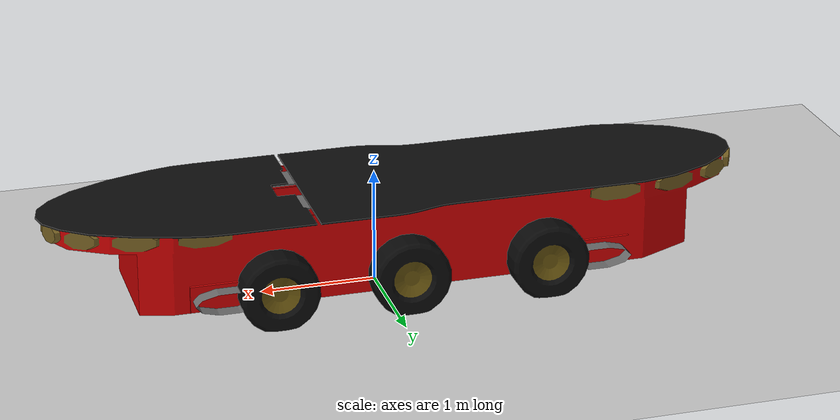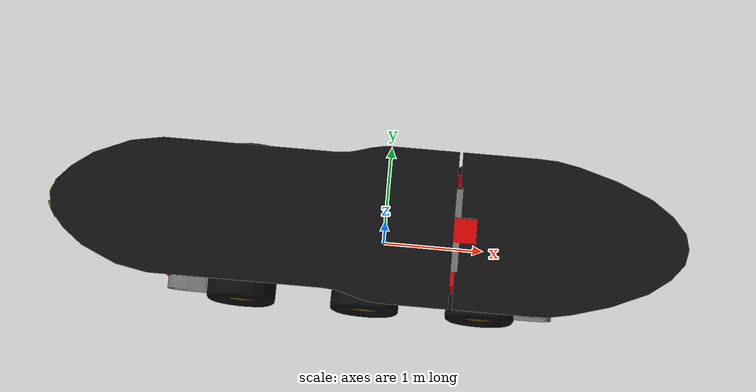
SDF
<?xml version="1.0"?>
<sdf version="1.6">
  <world name="default">

    <include>
      <uri>model://ground_plane</uri>
    </include>

    <include>
      <uri>model://sun</uri>
    </include>

    <model name='vehicle'>
      <pose>0 0 0.325 0 -0 0</pose>

      <link name='chassis'>
        <pose>-0.2 -0 0.2 0 -0 0</pose>
        <inertial>
          <mass>1.14395</mass>
          <inertia>
            <ixx>0.126164</ixx>
            <ixy>0</ixy>
            <ixz>0</ixz>
            <iyy>0.416519</iyy>
            <iyz>0</iyz>
            <izz>0.481014</izz>
          </inertia>
        </inertial>
        <visual name='visual'>
          <geometry>
            <mesh>
              <uri>model://pioneer3at/meshes/chassis.dae</uri>
              <scale>12 4 4</scale>
              <pose>0 0 7</pose>
            </mesh>
          </geometry>
        </visual>
        <collision name='collision'>
          <geometry>
            <box>
              <size>1.01142 1 0.568726</size>
            </box>
          </geometry>
        </collision>
      </link>

      <link name='front_left_wheel'>
        <pose>0.994283 0.625029 -0.025 -1.5707 0 0</pose>
        <inertial>
          <mass>2</mass>
          <inertia>
            <ixx>0.145833</ixx>
            <ixy>0</ixy>
            <ixz>0</ixz>
            <iyy>0.145833</iyy>
            <iyz>0</iyz>
            <izz>0.125</izz>
          </inertia>
        </inertial>
        <visual name='visual'>
          <geometry>
            <mesh>
              <uri>model://pioneer3at/meshes/wheel.dae</uri>
              <scale>3 3 3</scale>
            </mesh>
          </geometry>
        </visual>
        <collision name='collision'>
          <geometry>
            <sphere>
              <radius>0.3</radius>
            </sphere>
          </geometry>
          <surface>
            <friction>
              <ode>
                <mu>1</mu>
                <mu2>1</mu2>
                <slip1>0</slip1>
                <slip2>0</slip2>
              </ode>
            </friction>
            <contact>
              <ode>
                <soft_cfm>0</soft_cfm>
                <soft_erp>0.2</soft_erp>
                <kp>1e+13</kp>
                <kd>1</kd>
                <max_vel>0.01</max_vel>
                <min_depth>0.01</min_depth>
              </ode>
            </contact>
          </surface>
        </collision>
      </link>

      <link name='front_right_wheel'>
        <pose>0.994282 -0.625029 -0.025 -1.5707 0 0</pose>
        <inertial>
          <mass>2</mass>
          <inertia>
            <ixx>0.145833</ixx>
            <ixy>0</ixy>
            <ixz>0</ixz>
            <iyy>0.145833</iyy>
            <iyz>0</iyz>
            <izz>0.125</izz>
          </inertia>
        </inertial>
        <visual name='visual'>
          <geometry>
            <mesh>
              <uri>model://pioneer3at/meshes/wheel.dae</uri>
              <scale>3 3 3</scale>
            </mesh>
          </geometry>
        </visual>
        <collision name='collision'>
          <geometry>
            <sphere>
              <radius>0.3</radius>
            </sphere>
          </geometry>
          <surface>
            <friction>
              <ode>
                <mu>1</mu>
                <mu2>1</mu2>
                <slip1>0</slip1>
                <slip2>0</slip2>
              </ode>
            </friction>
            <contact>
              <ode>
                <soft_cfm>0</soft_cfm>
                <soft_erp>0.2</soft_erp>
                <kp>1e+13</kp>
                <kd>1</kd>
                <max_vel>0.01</max_vel>
                <min_depth>0.01</min_depth>
              </ode>
            </contact>
          </surface>
        </collision>
       </link>

       <link name='middle_left_wheel'>
        <pose>-0.137138 0.625029 -0.025 -1.5707 0 0</pose>
        <inertial>
          <mass>2</mass>
          <inertia>
            <ixx>0.145833</ixx>
            <ixy>0</ixy>
            <ixz>0</ixz>
            <iyy>0.145833</iyy>
            <iyz>0</iyz>
            <izz>0.125</izz>
          </inertia>
        </inertial>
        <visual name='visual'>
          <geometry>
            <mesh>
              <uri>model://pioneer3at/meshes/wheel.dae</uri>
              <scale>3 3 3</scale>
            </mesh>
          </geometry>
        </visual>
        <collision name='collision'>
          <geometry>
            <sphere>
              <radius>0.3</radius>
            </sphere>
          </geometry>
          <surface>
            <friction>
              <ode>
                <mu>1</mu>
                <mu2>1</mu2>
                <slip1>0</slip1>
                <slip2>0</slip2>
              </ode>
            </friction>
            <contact>
              <ode>
                <soft_cfm>0</soft_cfm>
                <soft_erp>0.2</soft_erp>
                <kp>1e+13</kp>
                <kd>1</kd>
                <max_vel>0.01</max_vel>
                <min_depth>0.01</min_depth>
              </ode>
            </contact>
          </surface>
        </collision>
      </link>

      <link name='middle_right_wheel'>
        <pose>-0.137138 -0.625029 -0.025 -1.5707 0 0</pose>
        <inertial>
          <mass>2</mass>
          <inertia>
            <ixx>0.145833</ixx>
            <ixy>0</ixy>
            <ixz>0</ixz>
            <iyy>0.145833</iyy>
            <iyz>0</iyz>
            <izz>0.125</izz>
          </inertia>
        </inertial>
        <visual name='visual'>
          <geometry>
            <mesh>
              <uri>model://pioneer3at/meshes/wheel.dae</uri>
              <scale>3 3 3</scale>
            </mesh>
          </geometry>
        </visual>
        <collision name='collision'>
          <geometry>
            <sphere>
              <radius>0.3</radius>
            </sphere>
          </geometry>
          <surface>
            <friction>
              <ode>
                <mu>1</mu>
                <mu2>1</mu2>
                <slip1>0</slip1>
                <slip2>0</slip2>
              </ode>
            </friction>
            <contact>
              <ode>
                <soft_cfm>0</soft_cfm>
                <soft_erp>0.2</soft_erp>
                <kp>1e+13</kp>
                <kd>1</kd>
                <max_vel>0.01</max_vel>
                <min_depth>0.01</min_depth>
              </ode>
            </contact>
          </surface>
        </collision>
      </link>

      <link name='back_left_wheel'>
        <pose>-1.357138 0.625029 -0.025 -1.5707 0 0</pose>
        <inertial>
          <mass>2</mass>
          <inertia>
            <ixx>0.145833</ixx>
            <ixy>0</ixy>
            <ixz>0</ixz>
            <iyy>0.145833</iyy>
            <iyz>0</iyz>
            <izz>0.125</izz>
          </inertia>
        </inertial>
        <visual name='visual'>
          <geometry>
            <mesh>
              <uri>model://pioneer3at/meshes/wheel.dae</uri>
              <scale>3 3 3</scale>
            </mesh>
          </geometry>
        </visual>
        <collision name='collision'>
          <geometry>
            <sphere>
              <radius>0.3</radius>
            </sphere>
          </geometry>
          <surface>
            <friction>
              <ode>
                <mu>1</mu>
                <mu2>1</mu2>
                <slip1>0</slip1>
                <slip2>0</slip2>
              </ode>
            </friction>
            <contact>
              <ode>
                <soft_cfm>0</soft_cfm>
                <soft_erp>0.2</soft_erp>
                <kp>1e+13</kp>
                <kd>1</kd>
                <max_vel>0.01</max_vel>
                <min_depth>0.01</min_depth>
              </ode>
            </contact>
          </surface>
        </collision>
      </link>

      <link name='back_right_wheel'>
        <pose>-1.357138 -0.625029 -0.025 -1.5707 0 0</pose>
        <inertial>
          <mass>2</mass>
          <inertia>
            <ixx>0.145833</ixx>
            <ixy>0</ixy>
            <ixz>0</ixz>
            <iyy>0.145833</iyy>
            <iyz>0</iyz>
            <izz>0.125</izz>
          </inertia>
        </inertial>
        <visual name='visual'>
          <geometry>
            <mesh>
              <uri>model://pioneer3at/meshes/wheel.dae</uri>
              <scale>3 3 3</scale>
            </mesh>
          </geometry>
        </visual>
        <collision name='collision'>
          <geometry>
            <sphere>
              <radius>0.3</radius>
            </sphere>
          </geometry>
          <surface>
            <friction>
              <ode>
                <mu>1</mu>
                <mu2>1</mu2>
                <slip1>0</slip1>
                <slip2>0</slip2>
              </ode>
            </friction>
            <contact>
              <ode>
                <soft_cfm>0</soft_cfm>
                <soft_erp>0.2</soft_erp>
                <kp>1e+13</kp>
                <kd>1</kd>
                <max_vel>0.01</max_vel>
                <min_depth>0.01</min_depth>
              </ode>
            </contact>
          </surface>
        </collision>
      </link>
      <!-- Add the laser range finder -->
            <link name="laser_link">
              <inertial>
                <!-- Mass of the laser range finder in kg -->
                <mass>0.1</mass>
              </inertial>
              <!-- Position is towards the front of the robot -->
              <!-- Laser finder is mounted on top -->
              <pose>0.35 0 0.30 0 0 0</pose>

              <!-- Add a mesh to make it more visually appealing -->
              <visual name="visual">
                <geometry>
                  <mesh>
                    <uri>model://hokuyo/meshes/hokuyo.dae</uri>
                  </mesh>
                </geometry>
              </visual>

              <!-- Collision properties of the base of the laser range finder-->
              <collision name="collision-base">
                <pose>0 0 -0.0145 0 0 0</pose>
                <geometry>
                  <box>
                    <size>0.05 0.05 0.041</size>
                  </box>
                </geometry>
              </collision>
              <!-- Collision properties of the top of the laser range finder-->
              <collision name="collision-top">
                <pose>0 0 0.0205 0 0 0</pose>
                <geometry>
                  <cylinder>
                    <radius>0.021</radius>
                    <length>0.029</length>
                  </cylinder>
                </geometry>
              </collision>

              <!-- Describes the type and properties of the sensor -->
        <sensor name="laser" type="ray">
          <pose>0.01 0 0.0175 0 -0 0</pose>
                <ray>
                  <scan>
                    <horizontal>
                      <samples>181</samples>
                      <resolution>1</resolution>
                      <min_angle>-1.57080</min_angle>
                      <max_angle>1.57080</max_angle>
                    </horizontal>
                  </scan>
                  <range>
                    <min>0.08</min>
                    <max>10</max>
                    <resolution>0.05</resolution>
                  </range>
                </ray>
                <always_on>1</always_on>
                <update_rate>10</update_rate>
                <visualize>true</visualize>

                <plugin name='laser' filename='libgazebo_ros_ray_sensor.so'>
                  <ros>
                    <namespace>/demo</namespace>
                    <argument>--ros-args --remap ~/out:=scan</argument>
                  </ros>
                  <output_type>sensor_msgs/LaserScan</output_type>
                </plugin>
        </sensor>
            </link>

      <joint name='front_left_wheel_joint' type='revolute'>
        <parent>chassis</parent>
        <child>front_left_wheel</child>
        <axis>
          <xyz>0 0 1</xyz>
          <limit>
            <lower>-1.79769e+308</lower>
            <upper>1.79769e+308</upper>
          </limit>
        </axis>
      </joint>

      <joint name='front_right_wheel_joint' type='revolute'>
        <parent>chassis</parent>
        <child>front_right_wheel</child>
        <axis>
          <xyz>0 0 1</xyz>
          <limit>
            <lower>-1.79769e+308</lower>
            <upper>1.79769e+308</upper>
          </limit>
        </axis>
      </joint>

      <joint name='middle_left_wheel_joint' type='revolute'>
        <parent>chassis</parent>
        <child>middle_left_wheel</child>
          <mass>1</mass>
        <axis>0 0 1/xyz>
          <limit>
            <lower>-1.79769e+308</lower>
            <upper>1.79769e+308</upper>
          </limit>
        </axis>
      </joint>

      <joint name='middle_right_wheel_joint' type='revolute'>
        <parent>chassis</parent>
        <child>middle_right_wheel</child>
        <axis>
          <xyz>0 0 1</xyz>
          <limit>
            <lower>-1.79769e+308</lower>
            <upper>1.79769e+308</upper>
          </limit>
        </axis>
      </joint>

      <joint name='back_left_wheel_joint' type='revolute'>
        <parent>chassis</parent>
        <child>back_left_wheel</child>
          <mass>1</mass>
        <axis>0 0 1/xyz>
          <limit>
            <lower>-1.79769e+308</lower>
            <upper>1.79769e+308</upper>
          </limit>
        </axis>
      </joint>

      <joint name='back_right_wheel_joint' type='revolute'>
        <parent>chassis</parent>
        <child>back_right_wheel</child>
        <axis>
          <xyz>0 0 1</xyz>
          <limit>
            <lower>-1.79769e+308</lower>
            <upper>1.79769e+308</upper>
          </limit>
        </axis>
      </joint>

      <plugin name='diff_drive' filename='libgazebo_ros_diff_drive.so'>

        <ros>
          <namespace>/demo</namespace>
          <remapping>cmd_vel:=cmd_demo</remapping>
          <remapping>odom:=odom_demo</remapping>
        </ros>

        <!-- wheels -->
        <left_joint>front_left_wheel_joint</left_joint>
        <right_joint>front_right_wheel_joint</right_joint>
        <mid_left_joint>middle_left_wheel_joint</mid_left_joint>
        <mid_right_joint>middle_right_wheel_joint</mid_right_joint>
        <back_left_joint>back_left_wheel_joint</back_left_joint>
        <back_right_joint>back_right_wheel_joint</back_right_joint>

        <!-- kinematics -->
        <wheel_separation>1.25</wheel_separation>
        <wheel_diameter>0.6</wheel_diameter>

        <!-- limits -->
        <max_wheel_torque>20</max_wheel_torque>
        <max_wheel_acceleration>1.0</max_wheel_acceleration>

        <!-- output -->
        <publish_odom>true</publish_odom>
        <publish_odom_tf>true</publish_odom_tf>
        <publish_wheel_tf>true</publish_wheel_tf>

        <odometry_frame>odom_demo</odometry_frame>
        <robot_base_frame>chassis</robot_base_frame>

      </plugin>

    </model>

  </world>
</sdf>
